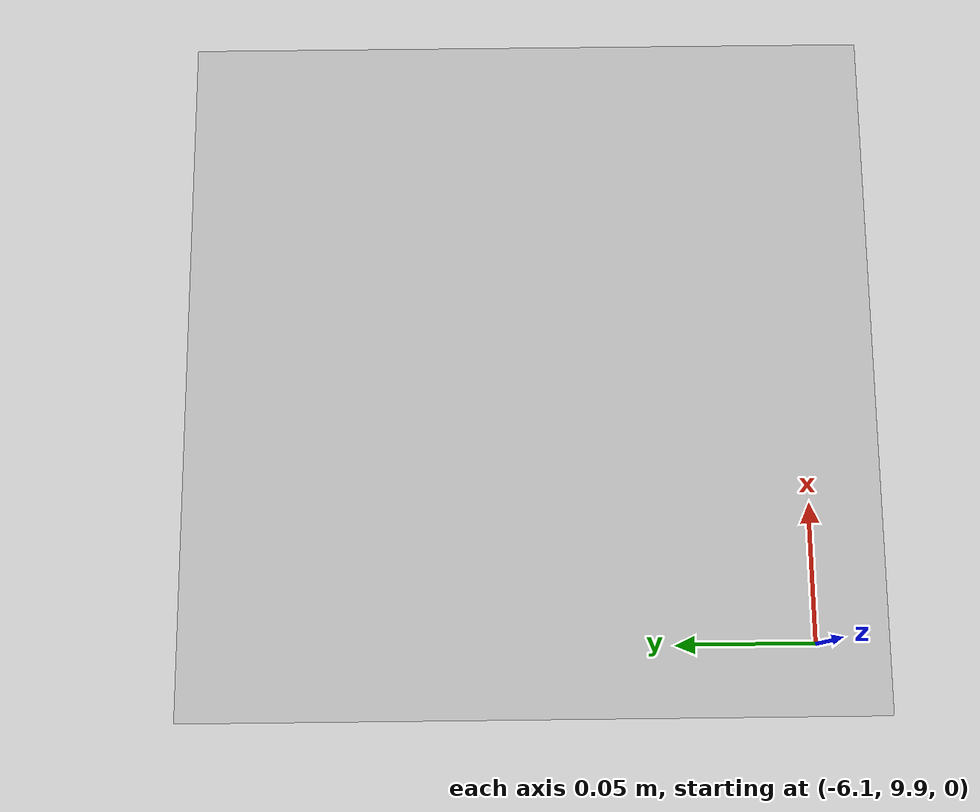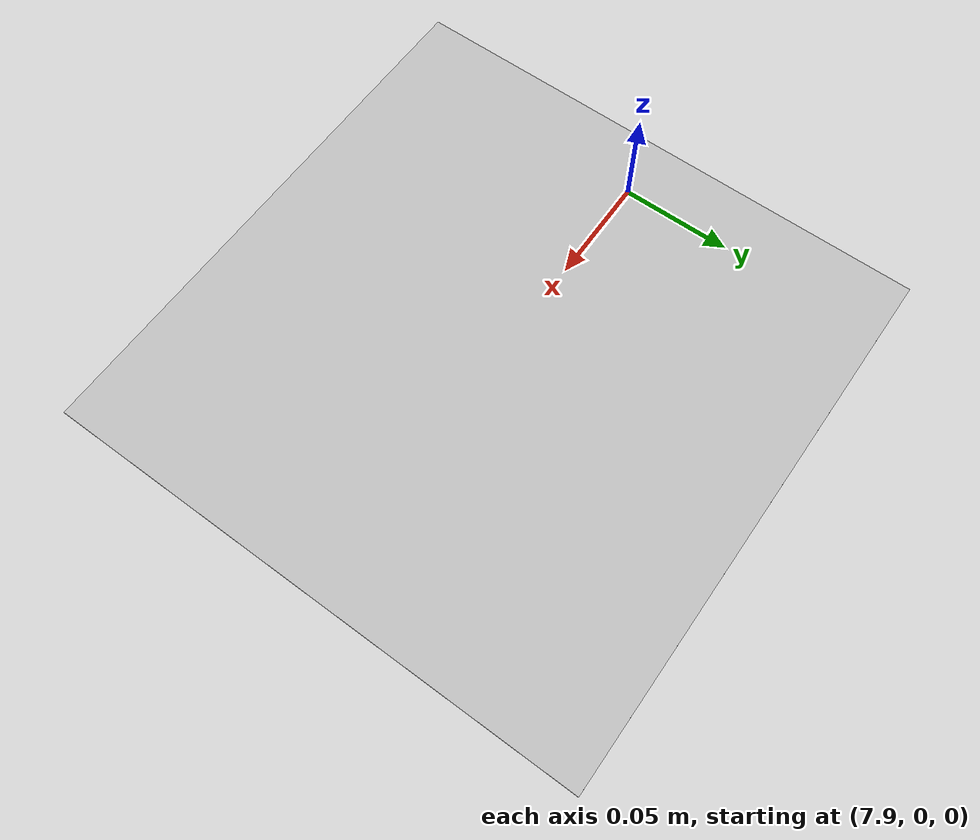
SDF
<?xml version="1.0" encoding="UTF-8"?>
<sdf version="1.9">
  <world name="marker_field">
    <physics type="ode">
      <max_step_size>0.004</max_step_size>
      <real_time_factor>1.0</real_time_factor>
      <real_time_update_rate>250</real_time_update_rate>
    </physics>
    <gravity>0 0 -9.8</gravity>
    <magnetic_field>6e-06 2.3e-05 -4.2e-05</magnetic_field>
    <atmosphere type="adiabatic"/>
    <scene>
      <grid>false</grid>
      <ambient>0.4 0.4 0.4 1</ambient>
      <background>0.7 0.7 0.7 1</background>
      <shadows>true</shadows>
    </scene>

    <model name="ground_plane">
      <static>true</static>
      <link name="link">
        <collision name="collision">
          <geometry>
            <plane>
              <normal>0 0 1</normal>
              <size>1 1</size>
            </plane>
          </geometry>
          <surface>
            <friction><ode/></friction>
            <bounce/>
            <contact/>
          </surface>
        </collision>
        <visual name="visual">
          <geometry>
            <plane>
              <normal>0 0 1</normal>
              <size>500 500</size>
            </plane>
          </geometry>
          <material>
            <ambient>0.8 0.8 0.8 1</ambient>
            <diffuse>0.8 0.8 0.8 1</diffuse>
            <specular>0.8 0.8 0.8 1</specular>
          </material>
        </visual>
        <pose>0 0 0 0 0 0</pose>
        <inertial>
          <pose>0 0 0 0 0 0</pose>
          <mass>1</mass>
          <inertia><ixx>1</ixx><ixy>0</ixy><ixz>0</ixz><iyy>1</iyy><iyz>0</iyz><izz>1</izz></inertia>
        </inertial>
        <enable_wind>false</enable_wind>
      </link>
      <pose>0 0 0 0 0 0</pose>
      <self_collide>false</self_collide>
    </model>

    <light name="sunUTC" type="directional">
      <pose>0 0 500 0 0 0</pose>
      <cast_shadows>true</cast_shadows>
      <intensity>1</intensity>
      <direction>0.001 0.625 -0.78</direction>
      <diffuse>0.904 0.904 0.904 1</diffuse>
      <specular>0.271 0.271 0.271 1</specular>
      <attenuation>
        <range>2000</range>
        <linear>0</linear>
        <constant>1</constant>
        <quadratic>0</quadratic>
      </attenuation>
      <spot>
        <inner_angle>0</inner_angle>
        <outer_angle>0</outer_angle>
        <falloff>0</falloff>
      </spot>
    </light>

    <spherical_coordinates>
      <surface_model>EARTH_WGS84</surface_model>
      <world_frame_orientation>ENU</world_frame_orientation>
      <latitude_deg>47.397971057728974</latitude_deg>
      <longitude_deg>8.546163739800146</longitude_deg>
      <elevation>0</elevation>
    </spherical_coordinates>

    <include>
      <uri>model://aruco_marker_0</uri>
      <name>aruco_marker_0</name>
      <pose>8 0 0.005 0 0 0</pose>
    </include>
    <include>
      <uri>model://aruco_marker_1</uri>
      <name>aruco_marker_1</name>
      <pose>-6 10 0.005 0 0 0</pose>
    </include>
    <include>
      <uri>model://aruco_marker_2</uri>
      <name>aruco_marker_2</name>
      <pose>0 -12 0.005 0 0 0</pose>
    </include>
  </world>
</sdf>

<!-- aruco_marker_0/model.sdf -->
<sdf version="1.9">
  <model name="aruco_marker_0">
    <static>true</static>
    <link name="link">
      <visual name="visual">
        <geometry>
          <plane>
            <normal>0 0 1</normal>
            <size>0.25 0.25</size>
          </plane>
        </geometry>
        <material>
          <pbr>
            <metal>
              <albedo_map>model://aruco_marker_0/materials/textures/aruco_marker_0.png</albedo_map>
              <emissive_map>model://aruco_marker_0/materials/textures/aruco_marker_0.png</emissive_map>
              <roughness>1.0</roughness>
              <metalness>0.0</metalness>
            </metal>
          </pbr>
        </material>
      </visual>
    </link>
  </model>
</sdf>

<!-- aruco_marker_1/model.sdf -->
<sdf version="1.9">
  <model name="aruco_marker_1">
    <static>true</static>
    <link name="link">
      <visual name="visual">
        <geometry>
          <plane>
            <normal>0 0 1</normal>
            <size>0.25 0.25</size>
          </plane>
        </geometry>
        <material>
          <pbr>
            <metal>
              <albedo_map>model://aruco_marker_1/materials/textures/aruco_marker_1.png</albedo_map>
              <emissive_map>model://aruco_marker_1/materials/textures/aruco_marker_1.png</emissive_map>
              <roughness>1.0</roughness>
              <metalness>0.0</metalness>
            </metal>
          </pbr>
        </material>
      </visual>
    </link>
  </model>
</sdf>

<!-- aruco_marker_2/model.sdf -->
<sdf version="1.9">
  <model name="aruco_marker_2">
    <static>true</static>
    <link name="link">
      <visual name="visual">
        <geometry>
          <box>
            <size>0.25 0.25 0.01</size>
          </box>
        </geometry>
        <material>
          <pbr>
            <metal>
              <albedo_map>materials/textures/aruco_marker_2.png</albedo_map>
              <roughness>1.0</roughness>
              <metalness>0.0</metalness>
            </metal>
          </pbr>
        </material>
      </visual>
    </link>
  </model>
</sdf>
